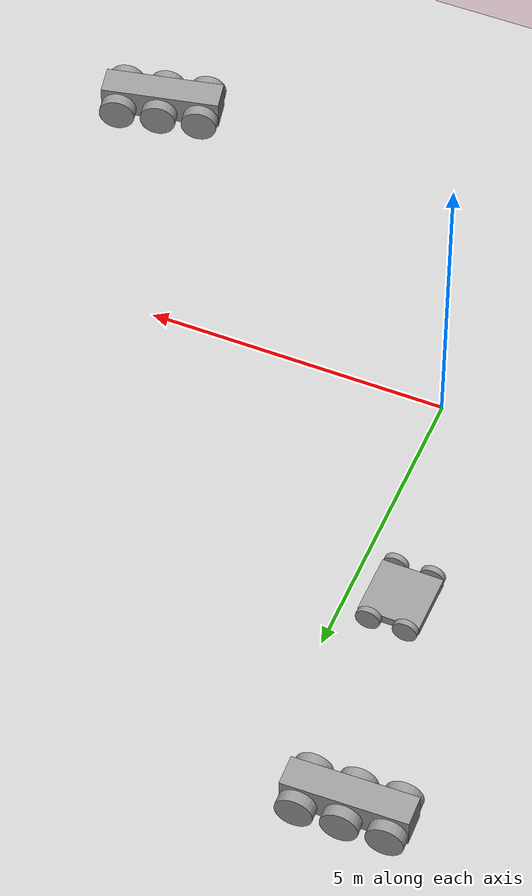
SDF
<sdf version="1.6">
 <world name="default">
  <model name="ground_plane">
   <static>1</static>
   <link name="link">
    <collision name="collision">
     <geometry><plane><normal>0 0 1</normal><size>100 100</size></plane></geometry>
     <surface>
      <contact><collide_bitmask>65535</collide_bitmask></contact>
      <friction><ode><mu>100</mu><mu2>50</mu2></ode></friction>
     </surface>
    </collision>
    <visual name="visual">
     <cast_shadows>0</cast_shadows>
     <geometry><plane><normal>0 0 1</normal><size>100 100</size></plane></geometry>
     <material>
      <script><uri>file://media/materials/scripts/gazebo.material</uri><name>Gazebo/Grey</name></script>
     </material>
    </visual>
   </link>
  </model>
  <model name="robot_0">
   <link name="link_0">
    <inertial>
     <mass>1</mass>
     <inertia>
      <ixx>0.166667</ixx>
      <ixy>0</ixy>
      <ixz>0</ixz>
      <iyy>0.166667</iyy>
      <iyz>0</iyz>
      <izz>0.166667</izz>
     </inertia>
    </inertial>
    <visual name="visual">
     <geometry><box><size>1 1 0.15</size></box></geometry>
     <material>
      <lighting>1</lighting>
      <script><uri>file://media/materials/scripts/gazebo.material</uri><name>Gazebo/Grey</name></script>
      <shader type="pixel"><normal_map>__default__</normal_map></shader>
      <ambient>0.3 0.3 0.3 1</ambient>
      <diffuse>0.7 0.7 0.7 1</diffuse>
      <specular>0.01 0.01 0.01 1</specular>
      <emissive>0 0 0 1</emissive>
     </material>
    </visual>
    <collision name="collision">
     <geometry><box><size>1 1 0.15</size></box></geometry>
     <surface>
      <friction>
       <ode><mu>1</mu><mu2>1</mu2><fdir1>0 0 0</fdir1><slip1>0</slip1><slip2>0</slip2></ode>
       <torsional>
        <coefficient>1</coefficient>
        <patch_radius>0</patch_radius>
        <surface_radius>0</surface_radius>
        <use_patch_radius>1</use_patch_radius>
        <ode><slip>0</slip></ode>
       </torsional>
      </friction>
      <bounce><restitution_coefficient>0</restitution_coefficient><threshold>1e+06</threshold></bounce>
      <contact>
       <collide_without_contact>0</collide_without_contact>
       <collide_without_contact_bitmask>1</collide_without_contact_bitmask>
       <collide_bitmask>1</collide_bitmask>
       <ode>
        <soft_cfm>0</soft_cfm>
        <soft_erp>0.2</soft_erp>
        <kp>1e+13</kp>
        <kd>1</kd>
        <max_vel>0.01</max_vel>
        <min_depth>0</min_depth>
       </ode>
       <bullet>
        <split_impulse>1</split_impulse>
        <split_impulse_penetration_threshold>-0.01</split_impulse_penetration_threshold>
        <soft_cfm>0</soft_cfm>
        <soft_erp>0.2</soft_erp>
        <kp>1e+13</kp>
        <kd>1</kd>
       </bullet>
      </contact>
     </surface>
    </collision>
   </link>
   <link name="link_1">
    <pose>-0.3 -0.550019 0 1.5707 -0 0</pose>
    <inertial>
     <mass>1</mass>
     <inertia><ixx>0.145833</ixx><ixy>0</ixy><ixz>0</ixz><iyy>0.145833</iyy><iyz>0</iyz><izz>0.125</izz></inertia>
    </inertial>
    <visual name="visual">
     <geometry><cylinder><radius>0.2</radius><length>0.1</length></cylinder></geometry>
     <material>
      <lighting>1</lighting>
      <script><uri>file://media/materials/scripts/gazebo.material</uri><name>Gazebo/Grey</name></script>
      <shader type="pixel"><normal_map>__default__</normal_map></shader>
      <ambient>0.3 0.3 0.3 1</ambient>
      <diffuse>0.7 0.7 0.7 1</diffuse>
      <specular>0.01 0.01 0.01 1</specular>
      <emissive>0 0 0 1</emissive>
     </material>
    </visual>
    <collision name="collision">
     <geometry><cylinder><radius>0.2</radius><length>0.1</length></cylinder></geometry>
     <surface>
      <friction>
       <ode><mu>1</mu><mu2>1</mu2><fdir1>0 0 0</fdir1><slip1>0</slip1><slip2>0</slip2></ode>
       <torsional>
        <coefficient>1</coefficient>
        <patch_radius>0</patch_radius>
        <surface_radius>0</surface_radius>
        <use_patch_radius>1</use_patch_radius>
        <ode><slip>0</slip></ode>
       </torsional>
      </friction>
      <bounce><restitution_coefficient>0</restitution_coefficient><threshold>1e+06</threshold></bounce>
      <contact>
       <collide_without_contact>0</collide_without_contact>
       <collide_without_contact_bitmask>1</collide_without_contact_bitmask>
       <collide_bitmask>1</collide_bitmask>
       <ode>
        <soft_cfm>0</soft_cfm>
        <soft_erp>0.2</soft_erp>
        <kp>1e+13</kp>
        <kd>1</kd>
        <max_vel>0.01</max_vel>
        <min_depth>0</min_depth>
       </ode>
       <bullet>
        <split_impulse>1</split_impulse>
        <split_impulse_penetration_threshold>-0.01</split_impulse_penetration_threshold>
        <soft_cfm>0</soft_cfm>
        <soft_erp>0.2</soft_erp>
        <kp>1e+13</kp>
        <kd>1</kd>
       </bullet>
      </contact>
     </surface>
    </collision>
   </link>
   <link name="link_1_clone">
    <pose>-0.3 0.550019 0 1.5707 -0 0</pose>
    <inertial>
     <mass>1</mass>
     <inertia><ixx>0.145833</ixx><ixy>0</ixy><ixz>0</ixz><iyy>0.145833</iyy><iyz>0</iyz><izz>0.125</izz></inertia>
    </inertial>
    <visual name="visual">
     <geometry><cylinder><radius>0.2</radius><length>0.1</length></cylinder></geometry>
     <material>
      <lighting>1</lighting>
      <script><uri>file://media/materials/scripts/gazebo.material</uri><name>Gazebo/Grey</name></script>
      <shader type="pixel"><normal_map>__default__</normal_map></shader>
      <ambient>0.3 0.3 0.3 1</ambient>
      <diffuse>0.7 0.7 0.7 1</diffuse>
      <specular>0.01 0.01 0.01 1</specular>
      <emissive>0 0 0 1</emissive>
     </material>
    </visual>
    <collision name="collision">
     <geometry><cylinder><radius>0.2</radius><length>0.1</length></cylinder></geometry>
     <surface>
      <friction>
       <ode><mu>1</mu><mu2>1</mu2><fdir1>0 0 0</fdir1><slip1>0</slip1><slip2>0</slip2></ode>
       <torsional>
        <coefficient>1</coefficient>
        <patch_radius>0</patch_radius>
        <surface_radius>0</surface_radius>
        <use_patch_radius>1</use_patch_radius>
        <ode><slip>0</slip></ode>
       </torsional>
      </friction>
      <bounce><restitution_coefficient>0</restitution_coefficient><threshold>1e+06</threshold></bounce>
      <contact>
       <collide_without_contact>0</collide_without_contact>
       <collide_without_contact_bitmask>1</collide_without_contact_bitmask>
       <collide_bitmask>1</collide_bitmask>
       <ode>
        <soft_cfm>0</soft_cfm>
        <soft_erp>0.2</soft_erp>
        <kp>1e+13</kp>
        <kd>1</kd>
        <max_vel>0.01</max_vel>
        <min_depth>0</min_depth>
       </ode>
       <bullet>
        <split_impulse>1</split_impulse>
        <split_impulse_penetration_threshold>-0.01</split_impulse_penetration_threshold>
        <soft_cfm>0</soft_cfm>
        <soft_erp>0.2</soft_erp>
        <kp>1e+13</kp>
        <kd>1</kd>
       </bullet>
      </contact>
     </surface>
    </collision>
   </link>
   <link name="link_1_clone_0">
    <pose>0.3 0.550019 0 1.5707 -0 0</pose>
    <inertial>
     <mass>1</mass>
     <inertia><ixx>0.145833</ixx><ixy>0</ixy><ixz>0</ixz><iyy>0.145833</iyy><iyz>0</iyz><izz>0.125</izz></inertia>
    </inertial>
    <visual name="visual">
     <geometry><cylinder><radius>0.2</radius><length>0.1</length></cylinder></geometry>
     <material>
      <lighting>1</lighting>
      <script><uri>file://media/materials/scripts/gazebo.material</uri><name>Gazebo/Grey</name></script>
      <shader type="pixel"><normal_map>__default__</normal_map></shader>
      <ambient>0.3 0.3 0.3 1</ambient>
      <diffuse>0.7 0.7 0.7 1</diffuse>
      <specular>0.01 0.01 0.01 1</specular>
      <emissive>0 0 0 1</emissive>
     </material>
    </visual>
    <collision name="collision">
     <geometry><cylinder><radius>0.2</radius><length>0.1</length></cylinder></geometry>
     <surface>
      <friction>
       <ode><mu>1</mu><mu2>1</mu2><fdir1>0 0 0</fdir1><slip1>0</slip1><slip2>0</slip2></ode>
       <torsional>
        <coefficient>1</coefficient>
        <patch_radius>0</patch_radius>
        <surface_radius>0</surface_radius>
        <use_patch_radius>1</use_patch_radius>
        <ode><slip>0</slip></ode>
       </torsional>
      </friction>
      <bounce><restitution_coefficient>0</restitution_coefficient><threshold>1e+06</threshold></bounce>
      <contact>
       <collide_without_contact>0</collide_without_contact>
       <collide_without_contact_bitmask>1</collide_without_contact_bitmask>
       <collide_bitmask>1</collide_bitmask>
       <ode>
        <soft_cfm>0</soft_cfm>
        <soft_erp>0.2</soft_erp>
        <kp>1e+13</kp>
        <kd>1</kd>
        <max_vel>0.01</max_vel>
        <min_depth>0</min_depth>
       </ode>
       <bullet>
        <split_impulse>1</split_impulse>
        <split_impulse_penetration_threshold>-0.01</split_impulse_penetration_threshold>
        <soft_cfm>0</soft_cfm>
        <soft_erp>0.2</soft_erp>
        <kp>1e+13</kp>
        <kd>1</kd>
       </bullet>
      </contact>
     </surface>
    </collision>
   </link>
   <link name="link_1_clone_1">
    <pose>0.3 -0.550019 0 1.5707 -0 0</pose>
    <inertial>
     <mass>1</mass>
     <inertia><ixx>0.145833</ixx><ixy>0</ixy><ixz>0</ixz><iyy>0.145833</iyy><iyz>0</iyz><izz>0.125</izz></inertia>
    </inertial>
    <visual name="visual">
     <geometry><cylinder><radius>0.2</radius><length>0.1</length></cylinder></geometry>
     <material>
      <lighting>1</lighting>
      <script><uri>file://media/materials/scripts/gazebo.material</uri><name>Gazebo/Grey</name></script>
      <shader type="pixel"><normal_map>__default__</normal_map></shader>
      <ambient>0.3 0.3 0.3 1</ambient>
      <diffuse>0.7 0.7 0.7 1</diffuse>
      <specular>0.01 0.01 0.01 1</specular>
      <emissive>0 0 0 1</emissive>
     </material>
    </visual>
    <collision name="collision">
     <geometry><cylinder><radius>0.2</radius><length>0.1</length></cylinder></geometry>
     <surface>
      <friction>
       <ode><mu>1</mu><mu2>1</mu2><fdir1>0 0 0</fdir1><slip1>0</slip1><slip2>0</slip2></ode>
       <torsional>
        <coefficient>1</coefficient>
        <patch_radius>0</patch_radius>
        <surface_radius>0</surface_radius>
        <use_patch_radius>1</use_patch_radius>
        <ode><slip>0</slip></ode>
       </torsional>
      </friction>
      <bounce><restitution_coefficient>0</restitution_coefficient><threshold>1e+06</threshold></bounce>
      <contact>
       <collide_without_contact>0</collide_without_contact>
       <collide_without_contact_bitmask>1</collide_without_contact_bitmask>
       <collide_bitmask>1</collide_bitmask>
       <ode>
        <soft_cfm>0</soft_cfm>
        <soft_erp>0.2</soft_erp>
        <kp>1e+13</kp>
        <kd>1</kd>
        <max_vel>0.01</max_vel>
        <min_depth>0</min_depth>
       </ode>
       <bullet>
        <split_impulse>1</split_impulse>
        <split_impulse_penetration_threshold>-0.01</split_impulse_penetration_threshold>
        <soft_cfm>0</soft_cfm>
        <soft_erp>0.2</soft_erp>
        <kp>1e+13</kp>
        <kd>1</kd>
       </bullet>
      </contact>
     </surface>
    </collision>
   </link>
   <joint name="link_0_JOINT_1" type="revolute">
    <parent>link_0</parent>
    <child>link_1_clone</child>
    <axis>
     <xyz>0 0 1</xyz>
     <use_parent_model_frame>0</use_parent_model_frame>
     <limit>
      <lower>-1.79769e+308</lower>
      <upper>1.79769e+308</upper>
      <effort>-1</effort>
      <velocity>-1</velocity>
     </limit>
     <dynamics>
      <spring_reference>0</spring_reference>
      <spring_stiffness>0</spring_stiffness>
      <damping>0</damping>
     </dynamics>
    </axis>
    <physics>
     <ode><limit><cfm>0</cfm><erp>0.2</erp></limit><suspension><cfm>0</cfm><erp>0.2</erp></suspension></ode>
    </physics>
   </joint>
   <joint name="link_0_JOINT_2" type="revolute">
    <parent>link_0</parent>
    <child>link_1_clone_0</child>
    <axis>
     <xyz>0 0 1</xyz>
     <use_parent_model_frame>0</use_parent_model_frame>
     <limit>
      <lower>-1.79769e+308</lower>
      <upper>1.79769e+308</upper>
      <effort>-1</effort>
      <velocity>-1</velocity>
     </limit>
     <dynamics>
      <spring_reference>0</spring_reference>
      <spring_stiffness>0</spring_stiffness>
      <damping>0</damping>
     </dynamics>
    </axis>
    <physics>
     <ode><limit><cfm>0</cfm><erp>0.2</erp></limit><suspension><cfm>0</cfm><erp>0.2</erp></suspension></ode>
    </physics>
   </joint>
   <joint name="link_0_JOINT_3" type="revolute">
    <parent>link_0</parent>
    <child>link_1</child>
    <axis>
     <xyz>0 0 1</xyz>
     <use_parent_model_frame>0</use_parent_model_frame>
     <limit>
      <lower>-1.79769e+308</lower>
      <upper>1.79769e+308</upper>
      <effort>-1</effort>
      <velocity>-1</velocity>
     </limit>
     <dynamics>
      <spring_reference>0</spring_reference>
      <spring_stiffness>0</spring_stiffness>
      <damping>0</damping>
     </dynamics>
    </axis>
    <physics>
     <ode><limit><cfm>0</cfm><erp>0.2</erp></limit><suspension><cfm>0</cfm><erp>0.2</erp></suspension></ode>
    </physics>
   </joint>
   <joint name="link_0_JOINT_4" type="revolute">
    <parent>link_0</parent>
    <child>link_1_clone_1</child>
    <axis>
     <xyz>1 0 0</xyz>
     <use_parent_model_frame>0</use_parent_model_frame>
     <limit>
      <lower>-1.79769e+308</lower>
      <upper>1.79769e+308</upper>
      <effort>-1</effort>
      <velocity>-1</velocity>
     </limit>
     <dynamics>
      <spring_reference>0</spring_reference>
      <spring_stiffness>0</spring_stiffness>
      <damping>0</damping>
     </dynamics>
    </axis>
    <physics>
     <ode><limit><cfm>0</cfm><erp>0.2</erp></limit><suspension><cfm>0</cfm><erp>0.2</erp></suspension></ode>
    </physics>
   </joint>
   <static>0</static>
   <pose>-0.826389 3.86695 0.200003 0 7e-06 -0.006748</pose>
  </model>
  <model name="tank">
   <link name="link_0">
    <pose>-3.62596 -8.05977 0.4 0 -0 0</pose>
    <inertial>
     <mass>1</mass>
     <inertia>
      <ixx>0.166667</ixx>
      <ixy>0</ixy>
      <ixz>0</ixz>
      <iyy>0.166667</iyy>
      <iyz>0</iyz>
      <izz>0.166667</izz>
     </inertia>
    </inertial>
    <visual name="visual">
     <geometry><box><size>2 0.5 0.5</size></box></geometry>
     <material>
      <lighting>1</lighting>
      <script><uri>file://media/materials/scripts/gazebo.material</uri><name>Gazebo/Grey</name></script>
      <shader type="pixel"><normal_map>__default__</normal_map></shader>
      <ambient>0.3 0.3 0.3 1</ambient>
      <diffuse>0.7 0.7 0.7 1</diffuse>
      <specular>0.01 0.01 0.01 1</specular>
      <emissive>0 0 0 1</emissive>
     </material>
    </visual>
    <collision name="collision">
     <geometry><box><size>2 0.5 0.5</size></box></geometry>
     <surface>
      <friction>
       <ode><mu>1</mu><mu2>1</mu2><fdir1>0 0 0</fdir1><slip1>0</slip1><slip2>0</slip2></ode>
       <torsional>
        <coefficient>1</coefficient>
        <patch_radius>0</patch_radius>
        <surface_radius>0</surface_radius>
        <use_patch_radius>1</use_patch_radius>
        <ode><slip>0</slip></ode>
       </torsional>
      </friction>
      <bounce><restitution_coefficient>0</restitution_coefficient><threshold>1e+06</threshold></bounce>
      <contact>
       <collide_without_contact>0</collide_without_contact>
       <collide_without_contact_bitmask>1</collide_without_contact_bitmask>
       <collide_bitmask>1</collide_bitmask>
       <ode>
        <soft_cfm>0</soft_cfm>
        <soft_erp>0.2</soft_erp>
        <kp>1e+13</kp>
        <kd>1</kd>
        <max_vel>0.01</max_vel>
        <min_depth>0</min_depth>
       </ode>
       <bullet>
        <split_impulse>1</split_impulse>
        <split_impulse_penetration_threshold>-0.01</split_impulse_penetration_threshold>
        <soft_cfm>0</soft_cfm>
        <soft_erp>0.2</soft_erp>
        <kp>1e+13</kp>
        <kd>1</kd>
       </bullet>
      </contact>
     </surface>
    </collision>
   </link>
   <link name="link_2">
    <pose>-4.32596 -8.4098 0.3 1.5707 -0 0</pose>
    <inertial>
     <mass>1</mass>
     <inertia><ixx>0.145833</ixx><ixy>0</ixy><ixz>0</ixz><iyy>0.145833</iyy><iyz>0</iyz><izz>0.125</izz></inertia>
    </inertial>
    <visual name="visual">
     <geometry><cylinder><radius>0.3</radius><length>0.2</length></cylinder></geometry>
     <material>
      <lighting>1</lighting>
      <script><uri>file://media/materials/scripts/gazebo.material</uri><name>Gazebo/Grey</name></script>
      <shader type="pixel"><normal_map>__default__</normal_map></shader>
      <ambient>0.3 0.3 0.3 1</ambient>
      <diffuse>0.7 0.7 0.7 1</diffuse>
      <specular>0.01 0.01 0.01 1</specular>
      <emissive>0 0 0 1</emissive>
     </material>
    </visual>
    <collision name="collision">
     <geometry><cylinder><radius>0.3</radius><length>0.2</length></cylinder></geometry>
     <surface>
      <friction>
       <ode><mu>1</mu><mu2>1</mu2><fdir1>0 0 0</fdir1><slip1>0</slip1><slip2>0</slip2></ode>
       <torsional>
        <coefficient>1</coefficient>
        <patch_radius>0</patch_radius>
        <surface_radius>0</surface_radius>
        <use_patch_radius>1</use_patch_radius>
        <ode><slip>0</slip></ode>
       </torsional>
      </friction>
      <bounce><restitution_coefficient>0</restitution_coefficient><threshold>1e+06</threshold></bounce>
      <contact>
       <collide_without_contact>0</collide_without_contact>
       <collide_without_contact_bitmask>1</collide_without_contact_bitmask>
       <collide_bitmask>1</collide_bitmask>
       <ode>
        <soft_cfm>0</soft_cfm>
        <soft_erp>0.2</soft_erp>
        <kp>1e+13</kp>
        <kd>1</kd>
        <max_vel>0.01</max_vel>
        <min_depth>0</min_depth>
       </ode>
       <bullet>
        <split_impulse>1</split_impulse>
        <split_impulse_penetration_threshold>-0.01</split_impulse_penetration_threshold>
        <soft_cfm>0</soft_cfm>
        <soft_erp>0.2</soft_erp>
        <kp>1e+13</kp>
        <kd>1</kd>
       </bullet>
      </contact>
     </surface>
    </collision>
   </link>
   <link name="link_2_clone">
    <pose>-3.62596 -8.4098 0.3 1.5707 -0 0</pose>
    <inertial>
     <mass>1</mass>
     <inertia><ixx>0.145833</ixx><ixy>0</ixy><ixz>0</ixz><iyy>0.145833</iyy><iyz>0</iyz><izz>0.125</izz></inertia>
    </inertial>
    <visual name="visual">
     <geometry><cylinder><radius>0.3</radius><length>0.2</length></cylinder></geometry>
     <material>
      <lighting>1</lighting>
      <script><uri>file://media/materials/scripts/gazebo.material</uri><name>Gazebo/Grey</name></script>
      <shader type="pixel"><normal_map>__default__</normal_map></shader>
      <ambient>0.3 0.3 0.3 1</ambient>
      <diffuse>0.7 0.7 0.7 1</diffuse>
      <specular>0.01 0.01 0.01 1</specular>
      <emissive>0 0 0 1</emissive>
     </material>
    </visual>
    <collision name="collision">
     <geometry><cylinder><radius>0.3</radius><length>0.2</length></cylinder></geometry>
     <surface>
      <friction>
       <ode><mu>1</mu><mu2>1</mu2><fdir1>0 0 0</fdir1><slip1>0</slip1><slip2>0</slip2></ode>
       <torsional>
        <coefficient>1</coefficient>
        <patch_radius>0</patch_radius>
        <surface_radius>0</surface_radius>
        <use_patch_radius>1</use_patch_radius>
        <ode><slip>0</slip></ode>
       </torsional>
      </friction>
      <bounce><restitution_coefficient>0</restitution_coefficient><threshold>1e+06</threshold></bounce>
      <contact>
       <collide_without_contact>0</collide_without_contact>
       <collide_without_contact_bitmask>1</collide_without_contact_bitmask>
       <collide_bitmask>1</collide_bitmask>
       <ode>
        <soft_cfm>0</soft_cfm>
        <soft_erp>0.2</soft_erp>
        <kp>1e+13</kp>
        <kd>1</kd>
        <max_vel>0.01</max_vel>
        <min_depth>0</min_depth>
       </ode>
       <bullet>
        <split_impulse>1</split_impulse>
        <split_impulse_penetration_threshold>-0.01</split_impulse_penetration_threshold>
        <soft_cfm>0</soft_cfm>
        <soft_erp>0.2</soft_erp>
        <kp>1e+13</kp>
        <kd>1</kd>
       </bullet>
      </contact>
     </surface>
    </collision>
   </link>
   <link name="link_2_clone_0">
    <pose>-2.92596 -8.4098 0.3 1.5707 -0 0</pose>
    <inertial>
     <mass>1</mass>
     <inertia><ixx>0.145833</ixx><ixy>0</ixy><ixz>0</ixz><iyy>0.145833</iyy><iyz>0</iyz><izz>0.125</izz></inertia>
    </inertial>
    <visual name="visual">
     <geometry><cylinder><radius>0.3</radius><length>0.2</length></cylinder></geometry>
     <material>
      <lighting>1</lighting>
      <script><uri>file://media/materials/scripts/gazebo.material</uri><name>Gazebo/Grey</name></script>
      <shader type="pixel"><normal_map>__default__</normal_map></shader>
      <ambient>0.3 0.3 0.3 1</ambient>
      <diffuse>0.7 0.7 0.7 1</diffuse>
      <specular>0.01 0.01 0.01 1</specular>
      <emissive>0 0 0 1</emissive>
     </material>
    </visual>
    <collision name="collision">
     <geometry><cylinder><radius>0.3</radius><length>0.2</length></cylinder></geometry>
     <surface>
      <friction>
       <ode><mu>1</mu><mu2>1</mu2><fdir1>0 0 0</fdir1><slip1>0</slip1><slip2>0</slip2></ode>
       <torsional>
        <coefficient>1</coefficient>
        <patch_radius>0</patch_radius>
        <surface_radius>0</surface_radius>
        <use_patch_radius>1</use_patch_radius>
        <ode><slip>0</slip></ode>
       </torsional>
      </friction>
      <bounce><restitution_coefficient>0</restitution_coefficient><threshold>1e+06</threshold></bounce>
      <contact>
       <collide_without_contact>0</collide_without_contact>
       <collide_without_contact_bitmask>1</collide_without_contact_bitmask>
       <collide_bitmask>1</collide_bitmask>
       <ode>
        <soft_cfm>0</soft_cfm>
        <soft_erp>0.2</soft_erp>
        <kp>1e+13</kp>
        <kd>1</kd>
        <max_vel>0.01</max_vel>
        <min_depth>0</min_depth>
       </ode>
       <bullet>
        <split_impulse>1</split_impulse>
        <split_impulse_penetration_threshold>-0.01</split_impulse_penetration_threshold>
        <soft_cfm>0</soft_cfm>
        <soft_erp>0.2</soft_erp>
        <kp>1e+13</kp>
        <kd>1</kd>
       </bullet>
      </contact>
     </surface>
    </collision>
   </link>
   <link name="link_2_clone_1">
    <pose>-4.32596 -7.70974 0.3 1.5707 -0 0</pose>
    <inertial>
     <mass>1</mass>
     <inertia><ixx>0.145833</ixx><ixy>0</ixy><ixz>0</ixz><iyy>0.145833</iyy><iyz>0</iyz><izz>0.125</izz></inertia>
    </inertial>
    <visual name="visual">
     <geometry><cylinder><radius>0.3</radius><length>0.2</length></cylinder></geometry>
     <material>
      <lighting>1</lighting>
      <script><uri>file://media/materials/scripts/gazebo.material</uri><name>Gazebo/Grey</name></script>
      <shader type="pixel"><normal_map>__default__</normal_map></shader>
      <ambient>0.3 0.3 0.3 1</ambient>
      <diffuse>0.7 0.7 0.7 1</diffuse>
      <specular>0.01 0.01 0.01 1</specular>
      <emissive>0 0 0 1</emissive>
     </material>
    </visual>
    <collision name="collision">
     <geometry><cylinder><radius>0.3</radius><length>0.2</length></cylinder></geometry>
     <surface>
      <friction>
       <ode><mu>1</mu><mu2>1</mu2><fdir1>0 0 0</fdir1><slip1>0</slip1><slip2>0</slip2></ode>
       <torsional>
        <coefficient>1</coefficient>
        <patch_radius>0</patch_radius>
        <surface_radius>0</surface_radius>
        <use_patch_radius>1</use_patch_radius>
        <ode><slip>0</slip></ode>
       </torsional>
      </friction>
      <bounce><restitution_coefficient>0</restitution_coefficient><threshold>1e+06</threshold></bounce>
      <contact>
       <collide_without_contact>0</collide_without_contact>
       <collide_without_contact_bitmask>1</collide_without_contact_bitmask>
       <collide_bitmask>1</collide_bitmask>
       <ode>
        <soft_cfm>0</soft_cfm>
        <soft_erp>0.2</soft_erp>
        <kp>1e+13</kp>
        <kd>1</kd>
        <max_vel>0.01</max_vel>
        <min_depth>0</min_depth>
       </ode>
       <bullet>
        <split_impulse>1</split_impulse>
        <split_impulse_penetration_threshold>-0.01</split_impulse_penetration_threshold>
        <soft_cfm>0</soft_cfm>
        <soft_erp>0.2</soft_erp>
        <kp>1e+13</kp>
        <kd>1</kd>
       </bullet>
      </contact>
     </surface>
    </collision>
   </link>
   <link name="link_2_clone_2">
    <pose>-3.62596 -7.70974 0.3 1.5707 -0 0</pose>
    <inertial>
     <mass>1</mass>
     <inertia><ixx>0.145833</ixx><ixy>0</ixy><ixz>0</ixz><iyy>0.145833</iyy><iyz>0</iyz><izz>0.125</izz></inertia>
    </inertial>
    <visual name="visual">
     <geometry><cylinder><radius>0.3</radius><length>0.2</length></cylinder></geometry>
     <material>
      <lighting>1</lighting>
      <script><uri>file://media/materials/scripts/gazebo.material</uri><name>Gazebo/Grey</name></script>
      <shader type="pixel"><normal_map>__default__</normal_map></shader>
      <ambient>0.3 0.3 0.3 1</ambient>
      <diffuse>0.7 0.7 0.7 1</diffuse>
      <specular>0.01 0.01 0.01 1</specular>
      <emissive>0 0 0 1</emissive>
     </material>
    </visual>
    <collision name="collision">
     <geometry><cylinder><radius>0.3</radius><length>0.2</length></cylinder></geometry>
     <surface>
      <friction>
       <ode><mu>1</mu><mu2>1</mu2><fdir1>0 0 0</fdir1><slip1>0</slip1><slip2>0</slip2></ode>
       <torsional>
        <coefficient>1</coefficient>
        <patch_radius>0</patch_radius>
        <surface_radius>0</surface_radius>
        <use_patch_radius>1</use_patch_radius>
        <ode><slip>0</slip></ode>
       </torsional>
      </friction>
      <bounce><restitution_coefficient>0</restitution_coefficient><threshold>1e+06</threshold></bounce>
      <contact>
       <collide_without_contact>0</collide_without_contact>
       <collide_without_contact_bitmask>1</collide_without_contact_bitmask>
       <collide_bitmask>1</collide_bitmask>
       <ode>
        <soft_cfm>0</soft_cfm>
        <soft_erp>0.2</soft_erp>
        <kp>1e+13</kp>
        <kd>1</kd>
        <max_vel>0.01</max_vel>
        <min_depth>0</min_depth>
       </ode>
       <bullet>
        <split_impulse>1</split_impulse>
        <split_impulse_penetration_threshold>-0.01</split_impulse_penetration_threshold>
        <soft_cfm>0</soft_cfm>
        <soft_erp>0.2</soft_erp>
        <kp>1e+13</kp>
        <kd>1</kd>
       </bullet>
      </contact>
     </surface>
    </collision>
   </link>
   <link name="link_2_clone_3">
    <pose>-2.92596 -7.70974 0.3 1.5707 -0 0</pose>
    <inertial>
     <mass>1</mass>
     <inertia><ixx>0.145833</ixx><ixy>0</ixy><ixz>0</ixz><iyy>0.145833</iyy><iyz>0</iyz><izz>0.125</izz></inertia>
    </inertial>
    <visual name="visual">
     <geometry><cylinder><radius>0.3</radius><length>0.2</length></cylinder></geometry>
     <material>
      <lighting>1</lighting>
      <script><uri>file://media/materials/scripts/gazebo.material</uri><name>Gazebo/Grey</name></script>
      <shader type="pixel"><normal_map>__default__</normal_map></shader>
      <ambient>0.3 0.3 0.3 1</ambient>
      <diffuse>0.7 0.7 0.7 1</diffuse>
      <specular>0.01 0.01 0.01 1</specular>
      <emissive>0 0 0 1</emissive>
     </material>
    </visual>
    <collision name="collision">
     <geometry><cylinder><radius>0.3</radius><length>0.2</length></cylinder></geometry>
     <surface>
      <friction>
       <ode><mu>1</mu><mu2>1</mu2><fdir1>0 0 0</fdir1><slip1>0</slip1><slip2>0</slip2></ode>
       <torsional>
        <coefficient>1</coefficient>
        <patch_radius>0</patch_radius>
        <surface_radius>0</surface_radius>
        <use_patch_radius>1</use_patch_radius>
        <ode><slip>0</slip></ode>
       </torsional>
      </friction>
      <bounce><restitution_coefficient>0</restitution_coefficient><threshold>1e+06</threshold></bounce>
      <contact>
       <collide_without_contact>0</collide_without_contact>
       <collide_without_contact_bitmask>1</collide_without_contact_bitmask>
       <collide_bitmask>1</collide_bitmask>
       <ode>
        <soft_cfm>0</soft_cfm>
        <soft_erp>0.2</soft_erp>
        <kp>1e+13</kp>
        <kd>1</kd>
        <max_vel>0.01</max_vel>
        <min_depth>0</min_depth>
       </ode>
       <bullet>
        <split_impulse>1</split_impulse>
        <split_impulse_penetration_threshold>-0.01</split_impulse_penetration_threshold>
        <soft_cfm>0</soft_cfm>
        <soft_erp>0.2</soft_erp>
        <kp>1e+13</kp>
        <kd>1</kd>
       </bullet>
      </contact>
     </surface>
    </collision>
   </link>
   <joint name="link_0_JOINT_0" type="revolute">
    <parent>link_0</parent>
    <child>link_2_clone_1</child>
    <axis>
     <xyz>0 0 1</xyz>
     <use_parent_model_frame>0</use_parent_model_frame>
     <limit>
      <lower>-1.79769e+308</lower>
      <upper>1.79769e+308</upper>
      <effort>-1</effort>
      <velocity>-1</velocity>
     </limit>
     <dynamics>
      <spring_reference>0</spring_reference>
      <spring_stiffness>0</spring_stiffness>
      <damping>0</damping>
     </dynamics>
    </axis>
    <physics>
     <ode><limit><cfm>0</cfm><erp>0.2</erp></limit><suspension><cfm>0</cfm><erp>0.2</erp></suspension></ode>
    </physics>
   </joint>
   <joint name="link_0_JOINT_1" type="revolute">
    <parent>link_0</parent>
    <child>link_2_clone_2</child>
    <axis>
     <xyz>0 0 1</xyz>
     <use_parent_model_frame>0</use_parent_model_frame>
     <limit>
      <lower>-1.79769e+308</lower>
      <upper>1.79769e+308</upper>
      <effort>-1</effort>
      <velocity>-1</velocity>
     </limit>
     <dynamics>
      <spring_reference>0</spring_reference>
      <spring_stiffness>0</spring_stiffness>
      <damping>0</damping>
     </dynamics>
    </axis>
    <physics>
     <ode><limit><cfm>0</cfm><erp>0.2</erp></limit><suspension><cfm>0</cfm><erp>0.2</erp></suspension></ode>
    </physics>
   </joint>
   <joint name="link_0_JOINT_2" type="revolute">
    <parent>link_0</parent>
    <child>link_2_clone_3</child>
    <axis>
     <xyz>0 0 1</xyz>
     <use_parent_model_frame>0</use_parent_model_frame>
     <limit>
      <lower>-1.79769e+308</lower>
      <upper>1.79769e+308</upper>
      <effort>-1</effort>
      <velocity>-1</velocity>
     </limit>
     <dynamics>
      <spring_reference>0</spring_reference>
      <spring_stiffness>0</spring_stiffness>
      <damping>0</damping>
     </dynamics>
    </axis>
    <physics>
     <ode><limit><cfm>0</cfm><erp>0.2</erp></limit><suspension><cfm>0</cfm><erp>0.2</erp></suspension></ode>
    </physics>
   </joint>
   <joint name="link_0_JOINT_3" type="revolute">
    <parent>link_0</parent>
    <child>link_2</child>
    <axis>
     <xyz>0 0 1</xyz>
     <use_parent_model_frame>0</use_parent_model_frame>
     <limit>
      <lower>-1.79769e+308</lower>
      <upper>1.79769e+308</upper>
      <effort>-1</effort>
      <velocity>-1</velocity>
     </limit>
     <dynamics>
      <spring_reference>0</spring_reference>
      <spring_stiffness>0</spring_stiffness>
      <damping>0</damping>
     </dynamics>
    </axis>
    <physics>
     <ode><limit><cfm>0</cfm><erp>0.2</erp></limit><suspension><cfm>0</cfm><erp>0.2</erp></suspension></ode>
    </physics>
   </joint>
   <joint name="link_0_JOINT_4" type="revolute">
    <parent>link_0</parent>
    <child>link_2_clone</child>
    <axis>
     <xyz>0 0 1</xyz>
     <use_parent_model_frame>0</use_parent_model_frame>
     <limit>
      <lower>-1.79769e+308</lower>
      <upper>1.79769e+308</upper>
      <effort>-1</effort>
      <velocity>-1</velocity>
     </limit>
     <dynamics>
      <spring_reference>0</spring_reference>
      <spring_stiffness>0</spring_stiffness>
      <damping>0</damping>
     </dynamics>
    </axis>
    <physics>
     <ode><limit><cfm>0</cfm><erp>0.2</erp></limit><suspension><cfm>0</cfm><erp>0.2</erp></suspension></ode>
    </physics>
   </joint>
   <joint name="link_0_JOINT_5" type="revolute">
    <parent>link_0</parent>
    <child>link_2_clone_0</child>
    <axis>
     <xyz>0 0 1</xyz>
     <use_parent_model_frame>0</use_parent_model_frame>
     <limit>
      <lower>-1.79769e+308</lower>
      <upper>1.79769e+308</upper>
      <effort>-1</effort>
      <velocity>-1</velocity>
     </limit>
     <dynamics>
      <spring_reference>0</spring_reference>
      <spring_stiffness>0</spring_stiffness>
      <damping>0</damping>
     </dynamics>
    </axis>
    <physics>
     <ode><limit><cfm>0</cfm><erp>0.2</erp></limit><suspension><cfm>0</cfm><erp>0.2</erp></suspension></ode>
    </physics>
   </joint>
   <static>0</static>
   <pose>8.53022 4.46621 1e-05 0 -0 0.209578</pose>
  </model>
  <model name="tank_0">
   <link name="link_0">
    <pose>-3.62596 -8.05977 0.4 0 -0 0</pose>
    <inertial>
     <mass>1</mass>
     <inertia>
      <ixx>0.166667</ixx>
      <ixy>0</ixy>
      <ixz>0</ixz>
      <iyy>0.166667</iyy>
      <iyz>0</iyz>
      <izz>0.166667</izz>
     </inertia>
    </inertial>
    <visual name="visual">
     <geometry><box><size>2 0.5 0.5</size></box></geometry>
     <material>
      <lighting>1</lighting>
      <script><uri>file://media/materials/scripts/gazebo.material</uri><name>Gazebo/Grey</name></script>
      <shader type="pixel"><normal_map>__default__</normal_map></shader>
      <ambient>0.3 0.3 0.3 1</ambient>
      <diffuse>0.7 0.7 0.7 1</diffuse>
      <specular>0.01 0.01 0.01 1</specular>
      <emissive>0 0 0 1</emissive>
     </material>
    </visual>
    <collision name="collision">
     <geometry><box><size>2 0.5 0.5</size></box></geometry>
     <surface>
      <friction>
       <ode><mu>1</mu><mu2>1</mu2><fdir1>0 0 0</fdir1><slip1>0</slip1><slip2>0</slip2></ode>
       <torsional>
        <coefficient>1</coefficient>
        <patch_radius>0</patch_radius>
        <surface_radius>0</surface_radius>
        <use_patch_radius>1</use_patch_radius>
        <ode><slip>0</slip></ode>
       </torsional>
      </friction>
      <bounce><restitution_coefficient>0</restitution_coefficient><threshold>1e+06</threshold></bounce>
      <contact>
       <collide_without_contact>0</collide_without_contact>
       <collide_without_contact_bitmask>1</collide_without_contact_bitmask>
       <collide_bitmask>1</collide_bitmask>
       <ode>
        <soft_cfm>0</soft_cfm>
        <soft_erp>0.2</soft_erp>
        <kp>1e+13</kp>
        <kd>1</kd>
        <max_vel>0.01</max_vel>
        <min_depth>0</min_depth>
       </ode>
       <bullet>
        <split_impulse>1</split_impulse>
        <split_impulse_penetration_threshold>-0.01</split_impulse_penetration_threshold>
        <soft_cfm>0</soft_cfm>
        <soft_erp>0.2</soft_erp>
        <kp>1e+13</kp>
        <kd>1</kd>
       </bullet>
      </contact>
     </surface>
    </collision>
   </link>
   <link name="link_2">
    <pose>-4.32596 -8.4098 0.3 1.5707 -0 0</pose>
    <inertial>
     <mass>1</mass>
     <inertia><ixx>0.145833</ixx><ixy>0</ixy><ixz>0</ixz><iyy>0.145833</iyy><iyz>0</iyz><izz>0.125</izz></inertia>
    </inertial>
    <visual name="visual">
     <geometry><cylinder><radius>0.3</radius><length>0.2</length></cylinder></geometry>
     <material>
      <lighting>1</lighting>
      <script><uri>file://media/materials/scripts/gazebo.material</uri><name>Gazebo/Grey</name></script>
      <shader type="pixel"><normal_map>__default__</normal_map></shader>
      <ambient>0.3 0.3 0.3 1</ambient>
      <diffuse>0.7 0.7 0.7 1</diffuse>
      <specular>0.01 0.01 0.01 1</specular>
      <emissive>0 0 0 1</emissive>
     </material>
    </visual>
    <collision name="collision">
     <geometry><cylinder><radius>0.3</radius><length>0.2</length></cylinder></geometry>
     <surface>
      <friction>
       <ode><mu>1</mu><mu2>1</mu2><fdir1>0 0 0</fdir1><slip1>0</slip1><slip2>0</slip2></ode>
       <torsional>
        <coefficient>1</coefficient>
        <patch_radius>0</patch_radius>
        <surface_radius>0</surface_radius>
        <use_patch_radius>1</use_patch_radius>
        <ode><slip>0</slip></ode>
       </torsional>
      </friction>
      <bounce><restitution_coefficient>0</restitution_coefficient><threshold>1e+06</threshold></bounce>
      <contact>
       <collide_without_contact>0</collide_without_contact>
       <collide_without_contact_bitmask>1</collide_without_contact_bitmask>
       <collide_bitmask>1</collide_bitmask>
       <ode>
        <soft_cfm>0</soft_cfm>
        <soft_erp>0.2</soft_erp>
        <kp>1e+13</kp>
        <kd>1</kd>
        <max_vel>0.01</max_vel>
        <min_depth>0</min_depth>
       </ode>
       <bullet>
        <split_impulse>1</split_impulse>
        <split_impulse_penetration_threshold>-0.01</split_impulse_penetration_threshold>
        <soft_cfm>0</soft_cfm>
        <soft_erp>0.2</soft_erp>
        <kp>1e+13</kp>
        <kd>1</kd>
       </bullet>
      </contact>
     </surface>
    </collision>
   </link>
   <link name="link_2_clone">
    <pose>-3.62596 -8.4098 0.3 1.5707 -0 0</pose>
    <inertial>
     <mass>1</mass>
     <inertia><ixx>0.145833</ixx><ixy>0</ixy><ixz>0</ixz><iyy>0.145833</iyy><iyz>0</iyz><izz>0.125</izz></inertia>
    </inertial>
    <visual name="visual">
     <geometry><cylinder><radius>0.3</radius><length>0.2</length></cylinder></geometry>
     <material>
      <lighting>1</lighting>
      <script><uri>file://media/materials/scripts/gazebo.material</uri><name>Gazebo/Grey</name></script>
      <shader type="pixel"><normal_map>__default__</normal_map></shader>
      <ambient>0.3 0.3 0.3 1</ambient>
      <diffuse>0.7 0.7 0.7 1</diffuse>
      <specular>0.01 0.01 0.01 1</specular>
      <emissive>0 0 0 1</emissive>
     </material>
    </visual>
    <collision name="collision">
     <geometry><cylinder><radius>0.3</radius><length>0.2</length></cylinder></geometry>
     <surface>
      <friction>
       <ode><mu>1</mu><mu2>1</mu2><fdir1>0 0 0</fdir1><slip1>0</slip1><slip2>0</slip2></ode>
       <torsional>
        <coefficient>1</coefficient>
        <patch_radius>0</patch_radius>
        <surface_radius>0</surface_radius>
        <use_patch_radius>1</use_patch_radius>
        <ode><slip>0</slip></ode>
       </torsional>
      </friction>
      <bounce><restitution_coefficient>0</restitution_coefficient><threshold>1e+06</threshold></bounce>
      <contact>
       <collide_without_contact>0</collide_without_contact>
       <collide_without_contact_bitmask>1</collide_without_contact_bitmask>
       <collide_bitmask>1</collide_bitmask>
       <ode>
        <soft_cfm>0</soft_cfm>
        <soft_erp>0.2</soft_erp>
        <kp>1e+13</kp>
        <kd>1</kd>
        <max_vel>0.01</max_vel>
        <min_depth>0</min_depth>
       </ode>
       <bullet>
        <split_impulse>1</split_impulse>
        <split_impulse_penetration_threshold>-0.01</split_impulse_penetration_threshold>
        <soft_cfm>0</soft_cfm>
        <soft_erp>0.2</soft_erp>
        <kp>1e+13</kp>
        <kd>1</kd>
       </bullet>
      </contact>
     </surface>
    </collision>
   </link>
   <link name="link_2_clone_0">
    <pose>-2.92596 -8.4098 0.3 1.5707 -0 0</pose>
    <inertial>
     <mass>1</mass>
     <inertia><ixx>0.145833</ixx><ixy>0</ixy><ixz>0</ixz><iyy>0.145833</iyy><iyz>0</iyz><izz>0.125</izz></inertia>
    </inertial>
    <visual name="visual">
     <geometry><cylinder><radius>0.3</radius><length>0.2</length></cylinder></geometry>
     <material>
      <lighting>1</lighting>
      <script><uri>file://media/materials/scripts/gazebo.material</uri><name>Gazebo/Grey</name></script>
      <shader type="pixel"><normal_map>__default__</normal_map></shader>
      <ambient>0.3 0.3 0.3 1</ambient>
      <diffuse>0.7 0.7 0.7 1</diffuse>
      <specular>0.01 0.01 0.01 1</specular>
      <emissive>0 0 0 1</emissive>
     </material>
    </visual>
    <collision name="collision">
     <geometry><cylinder><radius>0.3</radius><length>0.2</length></cylinder></geometry>
     <surface>
      <friction>
       <ode><mu>1</mu><mu2>1</mu2><fdir1>0 0 0</fdir1><slip1>0</slip1><slip2>0</slip2></ode>
       <torsional>
        <coefficient>1</coefficient>
        <patch_radius>0</patch_radius>
        <surface_radius>0</surface_radius>
        <use_patch_radius>1</use_patch_radius>
        <ode><slip>0</slip></ode>
       </torsional>
      </friction>
      <bounce><restitution_coefficient>0</restitution_coefficient><threshold>1e+06</threshold></bounce>
      <contact>
       <collide_without_contact>0</collide_without_contact>
       <collide_without_contact_bitmask>1</collide_without_contact_bitmask>
       <collide_bitmask>1</collide_bitmask>
       <ode>
        <soft_cfm>0</soft_cfm>
        <soft_erp>0.2</soft_erp>
        <kp>1e+13</kp>
        <kd>1</kd>
        <max_vel>0.01</max_vel>
        <min_depth>0</min_depth>
       </ode>
       <bullet>
        <split_impulse>1</split_impulse>
        <split_impulse_penetration_threshold>-0.01</split_impulse_penetration_threshold>
        <soft_cfm>0</soft_cfm>
        <soft_erp>0.2</soft_erp>
        <kp>1e+13</kp>
        <kd>1</kd>
       </bullet>
      </contact>
     </surface>
    </collision>
   </link>
   <link name="link_2_clone_1">
    <pose>-4.32596 -7.70974 0.3 1.5707 -0 0</pose>
    <inertial>
     <mass>1</mass>
     <inertia><ixx>0.145833</ixx><ixy>0</ixy><ixz>0</ixz><iyy>0.145833</iyy><iyz>0</iyz><izz>0.125</izz></inertia>
    </inertial>
    <visual name="visual">
     <geometry><cylinder><radius>0.3</radius><length>0.2</length></cylinder></geometry>
     <material>
      <lighting>1</lighting>
      <script><uri>file://media/materials/scripts/gazebo.material</uri><name>Gazebo/Grey</name></script>
      <shader type="pixel"><normal_map>__default__</normal_map></shader>
      <ambient>0.3 0.3 0.3 1</ambient>
      <diffuse>0.7 0.7 0.7 1</diffuse>
      <specular>0.01 0.01 0.01 1</specular>
      <emissive>0 0 0 1</emissive>
     </material>
    </visual>
    <collision name="collision">
     <geometry><cylinder><radius>0.3</radius><length>0.2</length></cylinder></geometry>
     <surface>
      <friction>
       <ode><mu>1</mu><mu2>1</mu2><fdir1>0 0 0</fdir1><slip1>0</slip1><slip2>0</slip2></ode>
       <torsional>
        <coefficient>1</coefficient>
        <patch_radius>0</patch_radius>
        <surface_radius>0</surface_radius>
        <use_patch_radius>1</use_patch_radius>
        <ode><slip>0</slip></ode>
       </torsional>
      </friction>
      <bounce><restitution_coefficient>0</restitution_coefficient><threshold>1e+06</threshold></bounce>
      <contact>
       <collide_without_contact>0</collide_without_contact>
       <collide_without_contact_bitmask>1</collide_without_contact_bitmask>
       <collide_bitmask>1</collide_bitmask>
       <ode>
        <soft_cfm>0</soft_cfm>
        <soft_erp>0.2</soft_erp>
        <kp>1e+13</kp>
        <kd>1</kd>
        <max_vel>0.01</max_vel>
        <min_depth>0</min_depth>
       </ode>
       <bullet>
        <split_impulse>1</split_impulse>
        <split_impulse_penetration_threshold>-0.01</split_impulse_penetration_threshold>
        <soft_cfm>0</soft_cfm>
        <soft_erp>0.2</soft_erp>
        <kp>1e+13</kp>
        <kd>1</kd>
       </bullet>
      </contact>
     </surface>
    </collision>
   </link>
   <link name="link_2_clone_2">
    <pose>-3.62596 -7.70974 0.3 1.5707 -0 0</pose>
    <inertial>
     <mass>1</mass>
     <inertia><ixx>0.145833</ixx><ixy>0</ixy><ixz>0</ixz><iyy>0.145833</iyy><iyz>0</iyz><izz>0.125</izz></inertia>
    </inertial>
    <visual name="visual">
     <geometry><cylinder><radius>0.3</radius><length>0.2</length></cylinder></geometry>
     <material>
      <lighting>1</lighting>
      <script><uri>file://media/materials/scripts/gazebo.material</uri><name>Gazebo/Grey</name></script>
      <shader type="pixel"><normal_map>__default__</normal_map></shader>
      <ambient>0.3 0.3 0.3 1</ambient>
      <diffuse>0.7 0.7 0.7 1</diffuse>
      <specular>0.01 0.01 0.01 1</specular>
      <emissive>0 0 0 1</emissive>
     </material>
    </visual>
    <collision name="collision">
     <geometry><cylinder><radius>0.3</radius><length>0.2</length></cylinder></geometry>
     <surface>
      <friction>
       <ode><mu>1</mu><mu2>1</mu2><fdir1>0 0 0</fdir1><slip1>0</slip1><slip2>0</slip2></ode>
       <torsional>
        <coefficient>1</coefficient>
        <patch_radius>0</patch_radius>
        <surface_radius>0</surface_radius>
        <use_patch_radius>1</use_patch_radius>
        <ode><slip>0</slip></ode>
       </torsional>
      </friction>
      <bounce><restitution_coefficient>0</restitution_coefficient><threshold>1e+06</threshold></bounce>
      <contact>
       <collide_without_contact>0</collide_without_contact>
       <collide_without_contact_bitmask>1</collide_without_contact_bitmask>
       <collide_bitmask>1</collide_bitmask>
       <ode>
        <soft_cfm>0</soft_cfm>
        <soft_erp>0.2</soft_erp>
        <kp>1e+13</kp>
        <kd>1</kd>
        <max_vel>0.01</max_vel>
        <min_depth>0</min_depth>
       </ode>
       <bullet>
        <split_impulse>1</split_impulse>
        <split_impulse_penetration_threshold>-0.01</split_impulse_penetration_threshold>
        <soft_cfm>0</soft_cfm>
        <soft_erp>0.2</soft_erp>
        <kp>1e+13</kp>
        <kd>1</kd>
       </bullet>
      </contact>
     </surface>
    </collision>
   </link>
   <link name="link_2_clone_3">
    <pose>-2.92596 -7.70974 0.3 1.5707 -0 0</pose>
    <inertial>
     <mass>1</mass>
     <inertia><ixx>0.145833</ixx><ixy>0</ixy><ixz>0</ixz><iyy>0.145833</iyy><iyz>0</iyz><izz>0.125</izz></inertia>
    </inertial>
    <visual name="visual">
     <geometry><cylinder><radius>0.3</radius><length>0.2</length></cylinder></geometry>
     <material>
      <lighting>1</lighting>
      <script><uri>file://media/materials/scripts/gazebo.material</uri><name>Gazebo/Grey</name></script>
      <shader type="pixel"><normal_map>__default__</normal_map></shader>
      <ambient>0.3 0.3 0.3 1</ambient>
      <diffuse>0.7 0.7 0.7 1</diffuse>
      <specular>0.01 0.01 0.01 1</specular>
      <emissive>0 0 0 1</emissive>
     </material>
    </visual>
    <collision name="collision">
     <geometry><cylinder><radius>0.3</radius><length>0.2</length></cylinder></geometry>
     <surface>
      <friction>
       <ode><mu>1</mu><mu2>1</mu2><fdir1>0 0 0</fdir1><slip1>0</slip1><slip2>0</slip2></ode>
       <torsional>
        <coefficient>1</coefficient>
        <patch_radius>0</patch_radius>
        <surface_radius>0</surface_radius>
        <use_patch_radius>1</use_patch_radius>
        <ode><slip>0</slip></ode>
       </torsional>
      </friction>
      <bounce><restitution_coefficient>0</restitution_coefficient><threshold>1e+06</threshold></bounce>
      <contact>
       <collide_without_contact>0</collide_without_contact>
       <collide_without_contact_bitmask>1</collide_without_contact_bitmask>
       <collide_bitmask>1</collide_bitmask>
       <ode>
        <soft_cfm>0</soft_cfm>
        <soft_erp>0.2</soft_erp>
        <kp>1e+13</kp>
        <kd>1</kd>
        <max_vel>0.01</max_vel>
        <min_depth>0</min_depth>
       </ode>
       <bullet>
        <split_impulse>1</split_impulse>
        <split_impulse_penetration_threshold>-0.01</split_impulse_penetration_threshold>
        <soft_cfm>0</soft_cfm>
        <soft_erp>0.2</soft_erp>
        <kp>1e+13</kp>
        <kd>1</kd>
       </bullet>
      </contact>
     </surface>
    </collision>
   </link>
   <joint name="link_0_JOINT_0" type="revolute">
    <parent>link_0</parent>
    <child>link_2_clone_1</child>
    <axis>
     <xyz>0 0 1</xyz>
     <use_parent_model_frame>0</use_parent_model_frame>
     <limit>
      <lower>-1.79769e+308</lower>
      <upper>1.79769e+308</upper>
      <effort>-1</effort>
      <velocity>-1</velocity>
     </limit>
     <dynamics>
      <spring_reference>0</spring_reference>
      <spring_stiffness>0</spring_stiffness>
      <damping>0</damping>
     </dynamics>
    </axis>
    <physics>
     <ode><limit><cfm>0</cfm><erp>0.2</erp></limit><suspension><cfm>0</cfm><erp>0.2</erp></suspension></ode>
    </physics>
   </joint>
   <joint name="link_0_JOINT_1" type="revolute">
    <parent>link_0</parent>
    <child>link_2_clone_2</child>
    <axis>
     <xyz>0 0 1</xyz>
     <use_parent_model_frame>0</use_parent_model_frame>
     <limit>
      <lower>-1.79769e+308</lower>
      <upper>1.79769e+308</upper>
      <effort>-1</effort>
      <velocity>-1</velocity>
     </limit>
     <dynamics>
      <spring_reference>0</spring_reference>
      <spring_stiffness>0</spring_stiffness>
      <damping>0</damping>
     </dynamics>
    </axis>
    <physics>
     <ode><limit><cfm>0</cfm><erp>0.2</erp></limit><suspension><cfm>0</cfm><erp>0.2</erp></suspension></ode>
    </physics>
   </joint>
   <joint name="link_0_JOINT_2" type="revolute">
    <parent>link_0</parent>
    <child>link_2_clone_3</child>
    <axis>
     <xyz>0 0 1</xyz>
     <use_parent_model_frame>0</use_parent_model_frame>
     <limit>
      <lower>-1.79769e+308</lower>
      <upper>1.79769e+308</upper>
      <effort>-1</effort>
      <velocity>-1</velocity>
     </limit>
     <dynamics>
      <spring_reference>0</spring_reference>
      <spring_stiffness>0</spring_stiffness>
      <damping>0</damping>
     </dynamics>
    </axis>
    <physics>
     <ode><limit><cfm>0</cfm><erp>0.2</erp></limit><suspension><cfm>0</cfm><erp>0.2</erp></suspension></ode>
    </physics>
   </joint>
   <joint name="link_0_JOINT_3" type="revolute">
    <parent>link_0</parent>
    <child>link_2</child>
    <axis>
     <xyz>0 0 1</xyz>
     <use_parent_model_frame>0</use_parent_model_frame>
     <limit>
      <lower>-1.79769e+308</lower>
      <upper>1.79769e+308</upper>
      <effort>-1</effort>
      <velocity>-1</velocity>
     </limit>
     <dynamics>
      <spring_reference>0</spring_reference>
      <spring_stiffness>0</spring_stiffness>
      <damping>0</damping>
     </dynamics>
    </axis>
    <physics>
     <ode><limit><cfm>0</cfm><erp>0.2</erp></limit><suspension><cfm>0</cfm><erp>0.2</erp></suspension></ode>
    </physics>
   </joint>
   <joint name="link_0_JOINT_4" type="revolute">
    <parent>link_0</parent>
    <child>link_2_clone</child>
    <axis>
     <xyz>0 0 1</xyz>
     <use_parent_model_frame>0</use_parent_model_frame>
     <limit>
      <lower>-1.79769e+308</lower>
      <upper>1.79769e+308</upper>
      <effort>-1</effort>
      <velocity>-1</velocity>
     </limit>
     <dynamics>
      <spring_reference>0</spring_reference>
      <spring_stiffness>0</spring_stiffness>
      <damping>0</damping>
     </dynamics>
    </axis>
    <physics>
     <ode><limit><cfm>0</cfm><erp>0.2</erp></limit><suspension><cfm>0</cfm><erp>0.2</erp></suspension></ode>
    </physics>
   </joint>
   <joint name="link_0_JOINT_5" type="revolute">
    <parent>link_0</parent>
    <child>link_2_clone_0</child>
    <axis>
     <xyz>0 0 1</xyz>
     <use_parent_model_frame>0</use_parent_model_frame>
     <limit>
      <lower>-1.79769e+308</lower>
      <upper>1.79769e+308</upper>
      <effort>-1</effort>
      <velocity>-1</velocity>
     </limit>
     <dynamics>
      <spring_reference>0</spring_reference>
      <spring_stiffness>0</spring_stiffness>
      <damping>0</damping>
     </dynamics>
    </axis>
    <physics>
     <ode><limit><cfm>0</cfm><erp>0.2</erp></limit><suspension><cfm>0</cfm><erp>0.2</erp></suspension></ode>
    </physics>
   </joint>
   <static>0</static>
   <pose>1.82474 15.8803 1.5e-05 1e-06 0 0.031678</pose>
  </model>
 </world>
</sdf>
